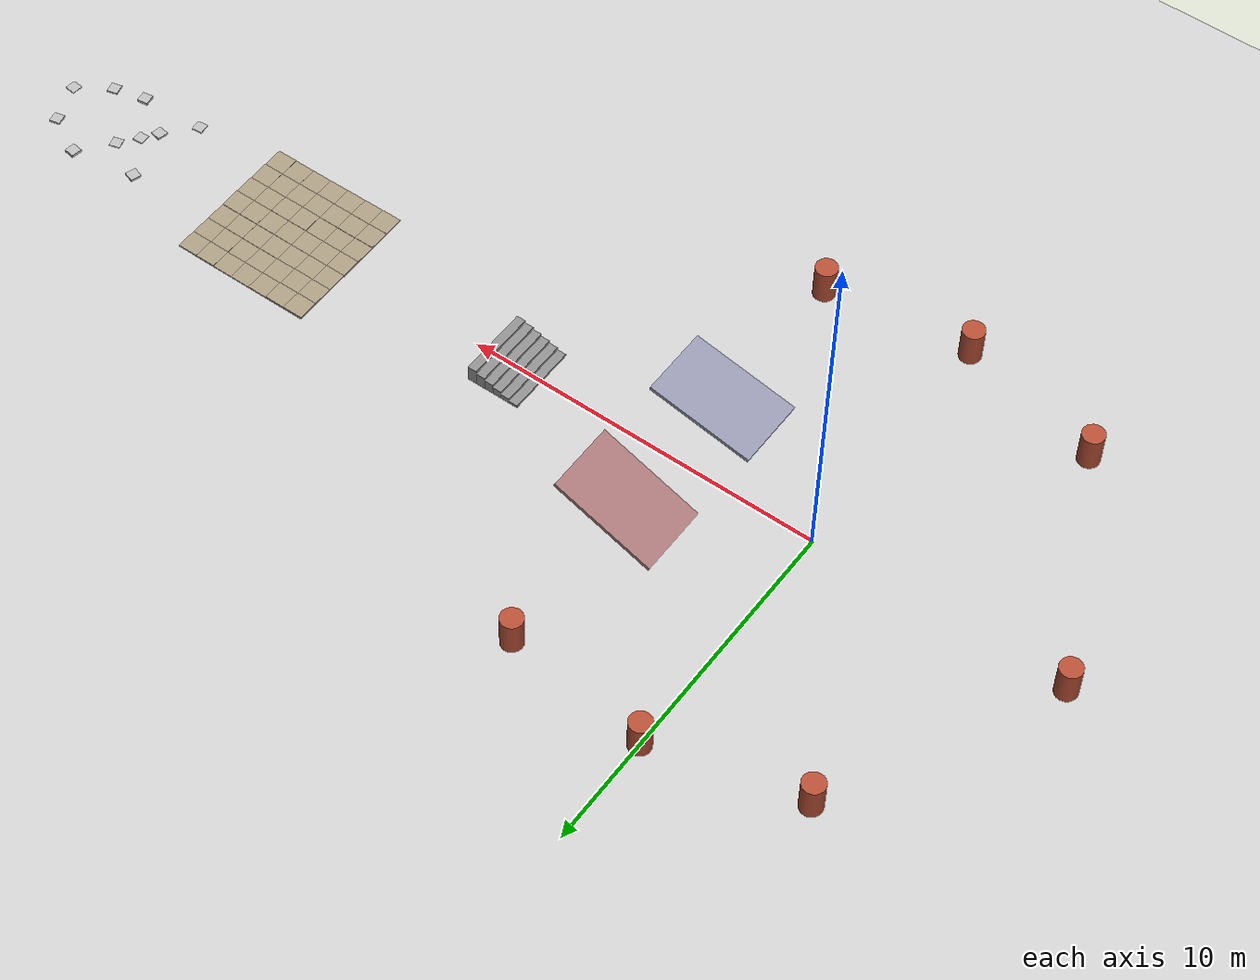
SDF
<?xml version="1.0" ?>
<sdf version="1.8">
  <world name="multi_terrain">

    <physics name='4ms' type='ignored'>
      <max_step_size>0.004</max_step_size>
      <real_time_factor>1</real_time_factor>
    </physics>

    <plugin filename="ignition-gazebo-physics-system"
            name="ignition::gazebo::systems::Physics"/>
    <plugin filename="ignition-gazebo-user-commands-system"
            name="ignition::gazebo::systems::UserCommands"/>
    <plugin filename="ignition-gazebo-scene-broadcaster-system"
            name="ignition::gazebo::systems::SceneBroadcaster"/>
    <plugin filename="ignition-gazebo-sensors-system"
            name="ignition::gazebo::systems::Sensors">
      <render_engine>ogre2</render_engine>
    </plugin>
    <plugin filename="ignition-gazebo-contact-system"
            name="ignition::gazebo::systems::Contact"/>
    <plugin filename="ignition-gazebo-imu-system"
            name="ignition::gazebo::systems::Imu"/>

    <light type="directional" name="sun">
      <cast_shadows>true</cast_shadows>
      <pose>0 0 10 0 0 0</pose>
      <diffuse>0.8 0.8 0.8 1</diffuse>
      <specular>0.2 0.2 0.2 1</specular>
      <direction>-0.5 0.1 -0.9</direction>
    </light>

    <model name="ground_plane">
      <static>true</static>
      <link name="link">
        <collision name="collision">
          <geometry><plane><normal>0 0 1</normal><size>200 200</size></plane></geometry>
          <surface><friction><ode><mu>1.0</mu><mu2>1.0</mu2></ode></friction></surface>
        </collision>
        <visual name="visual">
          <geometry><plane><normal>0 0 1</normal><size>200 200</size></plane></geometry>
          <material><ambient>0.8 0.8 0.8 1</ambient><diffuse>0.8 0.8 0.8 1</diffuse></material>
        </visual>
      </link>
    </model>

    <!-- Ramps (x ~ 2.5-5.5m): two lanes, 12 deg and 22 deg, rising toward +X -->
    <model name="ramp_12deg">
      <static>true</static>
      <pose>4 -2 0.3608 0 -0.2094 0</pose>
      <link name="link">
        <collision name="collision">
          <geometry><box><size>3 2 0.1</size></box></geometry>
          <surface><friction><ode><mu>1.0</mu><mu2>1.0</mu2></ode></friction></surface>
        </collision>
        <visual name="visual">
          <geometry><box><size>3 2 0.1</size></box></geometry>
          <material><ambient>0.6 0.6 0.7 1</ambient><diffuse>0.6 0.6 0.7 1</diffuse></material>
        </visual>
      </link>
    </model>

    <model name="ramp_22deg">
      <static>true</static>
      <pose>4 2 0.6083 0 -0.3840 0</pose>
      <link name="link">
        <collision name="collision">
          <geometry><box><size>3 2 0.1</size></box></geometry>
          <surface><friction><ode><mu>1.0</mu><mu2>1.0</mu2></ode></friction></surface>
        </collision>
        <visual name="visual">
          <geometry><box><size>3 2 0.1</size></box></geometry>
          <material><ambient>0.7 0.5 0.5 1</ambient><diffuse>0.7 0.5 0.5 1</diffuse></material>
        </visual>
      </link>
    </model>

    <!-- Staircase (x ~ 8-9.5m): 6 steps, 0.08m rise x 0.25m run -->
    <model name="staircase">
      <static>true</static>
      <pose>0 0 0 0 0 0</pose>
      <link name="step_1">
        <pose>8.125 0 0.04 0 0 0</pose>
        <collision name="collision"><geometry><box><size>0.25 2 0.08</size></box></geometry></collision>
        <visual name="visual"><geometry><box><size>0.25 2 0.08</size></box></geometry>
          <material><ambient>0.55 0.55 0.55 1</ambient><diffuse>0.55 0.55 0.55 1</diffuse></material></visual>
      </link>
      <link name="step_2">
        <pose>8.375 0 0.08 0 0 0</pose>
        <collision name="collision"><geometry><box><size>0.25 2 0.16</size></box></geometry></collision>
        <visual name="visual"><geometry><box><size>0.25 2 0.16</size></box></geometry>
          <material><ambient>0.55 0.55 0.55 1</ambient><diffuse>0.55 0.55 0.55 1</diffuse></material></visual>
      </link>
      <link name="step_3">
        <pose>8.625 0 0.12 0 0 0</pose>
        <collision name="collision"><geometry><box><size>0.25 2 0.24</size></box></geometry></collision>
        <visual name="visual"><geometry><box><size>0.25 2 0.24</size></box></geometry>
          <material><ambient>0.55 0.55 0.55 1</ambient><diffuse>0.55 0.55 0.55 1</diffuse></material></visual>
      </link>
      <link name="step_4">
        <pose>8.875 0 0.16 0 0 0</pose>
        <collision name="collision"><geometry><box><size>0.25 2 0.32</size></box></geometry></collision>
        <visual name="visual"><geometry><box><size>0.25 2 0.32</size></box></geometry>
          <material><ambient>0.55 0.55 0.55 1</ambient><diffuse>0.55 0.55 0.55 1</diffuse></material></visual>
      </link>
      <link name="step_5">
        <pose>9.125 0 0.2 0 0 0</pose>
        <collision name="collision"><geometry><box><size>0.25 2 0.4</size></box></geometry></collision>
        <visual name="visual"><geometry><box><size>0.25 2 0.4</size></box></geometry>
          <material><ambient>0.55 0.55 0.55 1</ambient><diffuse>0.55 0.55 0.55 1</diffuse></material></visual>
      </link>
      <link name="step_6">
        <pose>9.375 0 0.24 0 0 0</pose>
        <collision name="collision"><geometry><box><size>0.25 2 0.48</size></box></geometry></collision>
        <visual name="visual"><geometry><box><size>0.25 2 0.48</size></box></geometry>
          <material><ambient>0.55 0.55 0.55 1</ambient><diffuse>0.55 0.55 0.55 1</diffuse></material></visual>
      </link>
    </model>

    <model name="rough_patch">
      <static>true</static>
      <pose>0 0 0 0 0 0</pose>
      <link name="bump_0_0"><pose>14.286 -1.714 0.025 0 0 0</pose>
        <collision name="collision"><geometry><box><size>0.571 0.571 0.050</size></box></geometry>
          <surface><friction><ode><mu>1.0</mu><mu2>1.0</mu2></ode></friction></surface></collision>
        <visual name="visual"><geometry><box><size>0.571 0.571 0.050</size></box></geometry>
          <material><ambient>0.65 0.6 0.5 1</ambient><diffuse>0.65 0.6 0.5 1</diffuse></material></visual></link>
      <link name="bump_0_1"><pose>14.286 -1.143 0.024 0 0 0</pose>
        <collision name="collision"><geometry><box><size>0.571 0.571 0.048</size></box></geometry>
          <surface><friction><ode><mu>1.0</mu><mu2>1.0</mu2></ode></friction></surface></collision>
        <visual name="visual"><geometry><box><size>0.571 0.571 0.048</size></box></geometry>
          <material><ambient>0.65 0.6 0.5 1</ambient><diffuse>0.65 0.6 0.5 1</diffuse></material></visual></link>
      <link name="bump_0_2"><pose>14.286 -0.571 0.021 0 0 0</pose>
        <collision name="collision"><geometry><box><size>0.571 0.571 0.041</size></box></geometry>
          <surface><friction><ode><mu>1.0</mu><mu2>1.0</mu2></ode></friction></surface></collision>
        <visual name="visual"><geometry><box><size>0.571 0.571 0.041</size></box></geometry>
          <material><ambient>0.65 0.6 0.5 1</ambient><diffuse>0.65 0.6 0.5 1</diffuse></material></visual></link>
      <link name="bump_0_3"><pose>14.286 0.000 0.021 0 0 0</pose>
        <collision name="collision"><geometry><box><size>0.571 0.571 0.043</size></box></geometry>
          <surface><friction><ode><mu>1.0</mu><mu2>1.0</mu2></ode></friction></surface></collision>
        <visual name="visual"><geometry><box><size>0.571 0.571 0.043</size></box></geometry>
          <material><ambient>0.65 0.6 0.5 1</ambient><diffuse>0.65 0.6 0.5 1</diffuse></material></visual></link>
      <link name="bump_0_4"><pose>14.286 0.571 0.024 0 0 0</pose>
        <collision name="collision"><geometry><box><size>0.571 0.571 0.048</size></box></geometry>
          <surface><friction><ode><mu>1.0</mu><mu2>1.0</mu2></ode></friction></surface></collision>
        <visual name="visual"><geometry><box><size>0.571 0.571 0.048</size></box></geometry>
          <material><ambient>0.65 0.6 0.5 1</ambient><diffuse>0.65 0.6 0.5 1</diffuse></material></visual></link>
      <link name="bump_0_5"><pose>14.286 1.143 0.028 0 0 0</pose>
        <collision name="collision"><geometry><box><size>0.571 0.571 0.055</size></box></geometry>
          <surface><friction><ode><mu>1.0</mu><mu2>1.0</mu2></ode></friction></surface></collision>
        <visual name="visual"><geometry><box><size>0.571 0.571 0.055</size></box></geometry>
          <material><ambient>0.65 0.6 0.5 1</ambient><diffuse>0.65 0.6 0.5 1</diffuse></material></visual></link>
      <link name="bump_0_6"><pose>14.286 1.714 0.035 0 0 0</pose>
        <collision name="collision"><geometry><box><size>0.571 0.571 0.070</size></box></geometry>
          <surface><friction><ode><mu>1.0</mu><mu2>1.0</mu2></ode></friction></surface></collision>
        <visual name="visual"><geometry><box><size>0.571 0.571 0.070</size></box></geometry>
          <material><ambient>0.65 0.6 0.5 1</ambient><diffuse>0.65 0.6 0.5 1</diffuse></material></visual></link>
      <link name="bump_1_0"><pose>14.857 -1.714 0.020 0 0 0</pose>
        <collision name="collision"><geometry><box><size>0.571 0.571 0.040</size></box></geometry>
          <surface><friction><ode><mu>1.0</mu><mu2>1.0</mu2></ode></friction></surface></collision>
        <visual name="visual"><geometry><box><size>0.571 0.571 0.040</size></box></geometry>
          <material><ambient>0.65 0.6 0.5 1</ambient><diffuse>0.65 0.6 0.5 1</diffuse></material></visual></link>
      <link name="bump_1_1"><pose>14.857 -1.143 0.019 0 0 0</pose>
        <collision name="collision"><geometry><box><size>0.571 0.571 0.038</size></box></geometry>
          <surface><friction><ode><mu>1.0</mu><mu2>1.0</mu2></ode></friction></surface></collision>
        <visual name="visual"><geometry><box><size>0.571 0.571 0.038</size></box></geometry>
          <material><ambient>0.65 0.6 0.5 1</ambient><diffuse>0.65 0.6 0.5 1</diffuse></material></visual></link>
      <link name="bump_1_2"><pose>14.857 -0.571 0.014 0 0 0</pose>
        <collision name="collision"><geometry><box><size>0.571 0.571 0.027</size></box></geometry>
          <surface><friction><ode><mu>1.0</mu><mu2>1.0</mu2></ode></friction></surface></collision>
        <visual name="visual"><geometry><box><size>0.571 0.571 0.027</size></box></geometry>
          <material><ambient>0.65 0.6 0.5 1</ambient><diffuse>0.65 0.6 0.5 1</diffuse></material></visual></link>
      <link name="bump_1_3"><pose>14.857 0.000 0.020 0 0 0</pose>
        <collision name="collision"><geometry><box><size>0.571 0.571 0.040</size></box></geometry>
          <surface><friction><ode><mu>1.0</mu><mu2>1.0</mu2></ode></friction></surface></collision>
        <visual name="visual"><geometry><box><size>0.571 0.571 0.040</size></box></geometry>
          <material><ambient>0.65 0.6 0.5 1</ambient><diffuse>0.65 0.6 0.5 1</diffuse></material></visual></link>
      <link name="bump_1_4"><pose>14.857 0.571 0.022 0 0 0</pose>
        <collision name="collision"><geometry><box><size>0.571 0.571 0.045</size></box></geometry>
          <surface><friction><ode><mu>1.0</mu><mu2>1.0</mu2></ode></friction></surface></collision>
        <visual name="visual"><geometry><box><size>0.571 0.571 0.045</size></box></geometry>
          <material><ambient>0.65 0.6 0.5 1</ambient><diffuse>0.65 0.6 0.5 1</diffuse></material></visual></link>
      <link name="bump_1_5"><pose>14.857 1.143 0.030 0 0 0</pose>
        <collision name="collision"><geometry><box><size>0.571 0.571 0.060</size></box></geometry>
          <surface><friction><ode><mu>1.0</mu><mu2>1.0</mu2></ode></friction></surface></collision>
        <visual name="visual"><geometry><box><size>0.571 0.571 0.060</size></box></geometry>
          <material><ambient>0.65 0.6 0.5 1</ambient><diffuse>0.65 0.6 0.5 1</diffuse></material></visual></link>
      <link name="bump_1_6"><pose>14.857 1.714 0.033 0 0 0</pose>
        <collision name="collision"><geometry><box><size>0.571 0.571 0.066</size></box></geometry>
          <surface><friction><ode><mu>1.0</mu><mu2>1.0</mu2></ode></friction></surface></collision>
        <visual name="visual"><geometry><box><size>0.571 0.571 0.066</size></box></geometry>
          <material><ambient>0.65 0.6 0.5 1</ambient><diffuse>0.65 0.6 0.5 1</diffuse></material></visual></link>
      <link name="bump_2_0"><pose>15.429 -1.714 0.018 0 0 0</pose>
        <collision name="collision"><geometry><box><size>0.571 0.571 0.036</size></box></geometry>
          <surface><friction><ode><mu>1.0</mu><mu2>1.0</mu2></ode></friction></surface></collision>
        <visual name="visual"><geometry><box><size>0.571 0.571 0.036</size></box></geometry>
          <material><ambient>0.65 0.6 0.5 1</ambient><diffuse>0.65 0.6 0.5 1</diffuse></material></visual></link>
      <link name="bump_2_1"><pose>15.429 -1.143 0.020 0 0 0</pose>
        <collision name="collision"><geometry><box><size>0.571 0.571 0.040</size></box></geometry>
          <surface><friction><ode><mu>1.0</mu><mu2>1.0</mu2></ode></friction></surface></collision>
        <visual name="visual"><geometry><box><size>0.571 0.571 0.040</size></box></geometry>
          <material><ambient>0.65 0.6 0.5 1</ambient><diffuse>0.65 0.6 0.5 1</diffuse></material></visual></link>
      <link name="bump_2_2"><pose>15.429 -0.571 0.018 0 0 0</pose>
        <collision name="collision"><geometry><box><size>0.571 0.571 0.035</size></box></geometry>
          <surface><friction><ode><mu>1.0</mu><mu2>1.0</mu2></ode></friction></surface></collision>
        <visual name="visual"><geometry><box><size>0.571 0.571 0.035</size></box></geometry>
          <material><ambient>0.65 0.6 0.5 1</ambient><diffuse>0.65 0.6 0.5 1</diffuse></material></visual></link>
      <link name="bump_2_3"><pose>15.429 0.000 0.021 0 0 0</pose>
        <collision name="collision"><geometry><box><size>0.571 0.571 0.043</size></box></geometry>
          <surface><friction><ode><mu>1.0</mu><mu2>1.0</mu2></ode></friction></surface></collision>
        <visual name="visual"><geometry><box><size>0.571 0.571 0.043</size></box></geometry>
          <material><ambient>0.65 0.6 0.5 1</ambient><diffuse>0.65 0.6 0.5 1</diffuse></material></visual></link>
      <link name="bump_2_4"><pose>15.429 0.571 0.020 0 0 0</pose>
        <collision name="collision"><geometry><box><size>0.571 0.571 0.041</size></box></geometry>
          <surface><friction><ode><mu>1.0</mu><mu2>1.0</mu2></ode></friction></surface></collision>
        <visual name="visual"><geometry><box><size>0.571 0.571 0.041</size></box></geometry>
          <material><ambient>0.65 0.6 0.5 1</ambient><diffuse>0.65 0.6 0.5 1</diffuse></material></visual></link>
      <link name="bump_2_5"><pose>15.429 1.143 0.023 0 0 0</pose>
        <collision name="collision"><geometry><box><size>0.571 0.571 0.046</size></box></geometry>
          <surface><friction><ode><mu>1.0</mu><mu2>1.0</mu2></ode></friction></surface></collision>
        <visual name="visual"><geometry><box><size>0.571 0.571 0.046</size></box></geometry>
          <material><ambient>0.65 0.6 0.5 1</ambient><diffuse>0.65 0.6 0.5 1</diffuse></material></visual></link>
      <link name="bump_2_6"><pose>15.429 1.714 0.021 0 0 0</pose>
        <collision name="collision"><geometry><box><size>0.571 0.571 0.042</size></box></geometry>
          <surface><friction><ode><mu>1.0</mu><mu2>1.0</mu2></ode></friction></surface></collision>
        <visual name="visual"><geometry><box><size>0.571 0.571 0.042</size></box></geometry>
          <material><ambient>0.65 0.6 0.5 1</ambient><diffuse>0.65 0.6 0.5 1</diffuse></material></visual></link>
      <link name="bump_3_0"><pose>16.000 -1.714 0.014 0 0 0</pose>
        <collision name="collision"><geometry><box><size>0.571 0.571 0.027</size></box></geometry>
          <surface><friction><ode><mu>1.0</mu><mu2>1.0</mu2></ode></friction></surface></collision>
        <visual name="visual"><geometry><box><size>0.571 0.571 0.027</size></box></geometry>
          <material><ambient>0.65 0.6 0.5 1</ambient><diffuse>0.65 0.6 0.5 1</diffuse></material></visual></link>
      <link name="bump_3_1"><pose>16.000 -1.143 0.021 0 0 0</pose>
        <collision name="collision"><geometry><box><size>0.571 0.571 0.042</size></box></geometry>
          <surface><friction><ode><mu>1.0</mu><mu2>1.0</mu2></ode></friction></surface></collision>
        <visual name="visual"><geometry><box><size>0.571 0.571 0.042</size></box></geometry>
          <material><ambient>0.65 0.6 0.5 1</ambient><diffuse>0.65 0.6 0.5 1</diffuse></material></visual></link>
      <link name="bump_3_2"><pose>16.000 -0.571 0.026 0 0 0</pose>
        <collision name="collision"><geometry><box><size>0.571 0.571 0.053</size></box></geometry>
          <surface><friction><ode><mu>1.0</mu><mu2>1.0</mu2></ode></friction></surface></collision>
        <visual name="visual"><geometry><box><size>0.571 0.571 0.053</size></box></geometry>
          <material><ambient>0.65 0.6 0.5 1</ambient><diffuse>0.65 0.6 0.5 1</diffuse></material></visual></link>
      <link name="bump_3_3"><pose>16.000 0.000 0.023 0 0 0</pose>
        <collision name="collision"><geometry><box><size>0.571 0.571 0.046</size></box></geometry>
          <surface><friction><ode><mu>1.0</mu><mu2>1.0</mu2></ode></friction></surface></collision>
        <visual name="visual"><geometry><box><size>0.571 0.571 0.046</size></box></geometry>
          <material><ambient>0.65 0.6 0.5 1</ambient><diffuse>0.65 0.6 0.5 1</diffuse></material></visual></link>
      <link name="bump_3_4"><pose>16.000 0.571 0.019 0 0 0</pose>
        <collision name="collision"><geometry><box><size>0.571 0.571 0.038</size></box></geometry>
          <surface><friction><ode><mu>1.0</mu><mu2>1.0</mu2></ode></friction></surface></collision>
        <visual name="visual"><geometry><box><size>0.571 0.571 0.038</size></box></geometry>
          <material><ambient>0.65 0.6 0.5 1</ambient><diffuse>0.65 0.6 0.5 1</diffuse></material></visual></link>
      <link name="bump_3_5"><pose>16.000 1.143 0.016 0 0 0</pose>
        <collision name="collision"><geometry><box><size>0.571 0.571 0.031</size></box></geometry>
          <surface><friction><ode><mu>1.0</mu><mu2>1.0</mu2></ode></friction></surface></collision>
        <visual name="visual"><geometry><box><size>0.571 0.571 0.031</size></box></geometry>
          <material><ambient>0.65 0.6 0.5 1</ambient><diffuse>0.65 0.6 0.5 1</diffuse></material></visual></link>
      <link name="bump_3_6"><pose>16.000 1.714 0.015 0 0 0</pose>
        <collision name="collision"><geometry><box><size>0.571 0.571 0.030</size></box></geometry>
          <surface><friction><ode><mu>1.0</mu><mu2>1.0</mu2></ode></friction></surface></collision>
        <visual name="visual"><geometry><box><size>0.571 0.571 0.030</size></box></geometry>
          <material><ambient>0.65 0.6 0.5 1</ambient><diffuse>0.65 0.6 0.5 1</diffuse></material></visual></link>
      <link name="bump_4_0"><pose>16.571 -1.714 0.010 0 0 0</pose>
        <collision name="collision"><geometry><box><size>0.571 0.571 0.020</size></box></geometry>
          <surface><friction><ode><mu>1.0</mu><mu2>1.0</mu2></ode></friction></surface></collision>
        <visual name="visual"><geometry><box><size>0.571 0.571 0.020</size></box></geometry>
          <material><ambient>0.65 0.6 0.5 1</ambient><diffuse>0.65 0.6 0.5 1</diffuse></material></visual></link>
      <link name="bump_4_1"><pose>16.571 -1.143 0.019 0 0 0</pose>
        <collision name="collision"><geometry><box><size>0.571 0.571 0.037</size></box></geometry>
          <surface><friction><ode><mu>1.0</mu><mu2>1.0</mu2></ode></friction></surface></collision>
        <visual name="visual"><geometry><box><size>0.571 0.571 0.037</size></box></geometry>
          <material><ambient>0.65 0.6 0.5 1</ambient><diffuse>0.65 0.6 0.5 1</diffuse></material></visual></link>
      <link name="bump_4_2"><pose>16.571 -0.571 0.026 0 0 0</pose>
        <collision name="collision"><geometry><box><size>0.571 0.571 0.053</size></box></geometry>
          <surface><friction><ode><mu>1.0</mu><mu2>1.0</mu2></ode></friction></surface></collision>
        <visual name="visual"><geometry><box><size>0.571 0.571 0.053</size></box></geometry>
          <material><ambient>0.65 0.6 0.5 1</ambient><diffuse>0.65 0.6 0.5 1</diffuse></material></visual></link>
      <link name="bump_4_3"><pose>16.571 0.000 0.023 0 0 0</pose>
        <collision name="collision"><geometry><box><size>0.571 0.571 0.046</size></box></geometry>
          <surface><friction><ode><mu>1.0</mu><mu2>1.0</mu2></ode></friction></surface></collision>
        <visual name="visual"><geometry><box><size>0.571 0.571 0.046</size></box></geometry>
          <material><ambient>0.65 0.6 0.5 1</ambient><diffuse>0.65 0.6 0.5 1</diffuse></material></visual></link>
      <link name="bump_4_4"><pose>16.571 0.571 0.018 0 0 0</pose>
        <collision name="collision"><geometry><box><size>0.571 0.571 0.035</size></box></geometry>
          <surface><friction><ode><mu>1.0</mu><mu2>1.0</mu2></ode></friction></surface></collision>
        <visual name="visual"><geometry><box><size>0.571 0.571 0.035</size></box></geometry>
          <material><ambient>0.65 0.6 0.5 1</ambient><diffuse>0.65 0.6 0.5 1</diffuse></material></visual></link>
      <link name="bump_4_5"><pose>16.571 1.143 0.014 0 0 0</pose>
        <collision name="collision"><geometry><box><size>0.571 0.571 0.028</size></box></geometry>
          <surface><friction><ode><mu>1.0</mu><mu2>1.0</mu2></ode></friction></surface></collision>
        <visual name="visual"><geometry><box><size>0.571 0.571 0.028</size></box></geometry>
          <material><ambient>0.65 0.6 0.5 1</ambient><diffuse>0.65 0.6 0.5 1</diffuse></material></visual></link>
      <link name="bump_4_6"><pose>16.571 1.714 0.015 0 0 0</pose>
        <collision name="collision"><geometry><box><size>0.571 0.571 0.030</size></box></geometry>
          <surface><friction><ode><mu>1.0</mu><mu2>1.0</mu2></ode></friction></surface></collision>
        <visual name="visual"><geometry><box><size>0.571 0.571 0.030</size></box></geometry>
          <material><ambient>0.65 0.6 0.5 1</ambient><diffuse>0.65 0.6 0.5 1</diffuse></material></visual></link>
      <link name="bump_5_0"><pose>17.143 -1.714 0.010 0 0 0</pose>
        <collision name="collision"><geometry><box><size>0.571 0.571 0.020</size></box></geometry>
          <surface><friction><ode><mu>1.0</mu><mu2>1.0</mu2></ode></friction></surface></collision>
        <visual name="visual"><geometry><box><size>0.571 0.571 0.020</size></box></geometry>
          <material><ambient>0.65 0.6 0.5 1</ambient><diffuse>0.65 0.6 0.5 1</diffuse></material></visual></link>
      <link name="bump_5_1"><pose>17.143 -1.143 0.016 0 0 0</pose>
        <collision name="collision"><geometry><box><size>0.571 0.571 0.033</size></box></geometry>
          <surface><friction><ode><mu>1.0</mu><mu2>1.0</mu2></ode></friction></surface></collision>
        <visual name="visual"><geometry><box><size>0.571 0.571 0.033</size></box></geometry>
          <material><ambient>0.65 0.6 0.5 1</ambient><diffuse>0.65 0.6 0.5 1</diffuse></material></visual></link>
      <link name="bump_5_2"><pose>17.143 -0.571 0.022 0 0 0</pose>
        <collision name="collision"><geometry><box><size>0.571 0.571 0.044</size></box></geometry>
          <surface><friction><ode><mu>1.0</mu><mu2>1.0</mu2></ode></friction></surface></collision>
        <visual name="visual"><geometry><box><size>0.571 0.571 0.044</size></box></geometry>
          <material><ambient>0.65 0.6 0.5 1</ambient><diffuse>0.65 0.6 0.5 1</diffuse></material></visual></link>
      <link name="bump_5_3"><pose>17.143 0.000 0.024 0 0 0</pose>
        <collision name="collision"><geometry><box><size>0.571 0.571 0.047</size></box></geometry>
          <surface><friction><ode><mu>1.0</mu><mu2>1.0</mu2></ode></friction></surface></collision>
        <visual name="visual"><geometry><box><size>0.571 0.571 0.047</size></box></geometry>
          <material><ambient>0.65 0.6 0.5 1</ambient><diffuse>0.65 0.6 0.5 1</diffuse></material></visual></link>
      <link name="bump_5_4"><pose>17.143 0.571 0.018 0 0 0</pose>
        <collision name="collision"><geometry><box><size>0.571 0.571 0.036</size></box></geometry>
          <surface><friction><ode><mu>1.0</mu><mu2>1.0</mu2></ode></friction></surface></collision>
        <visual name="visual"><geometry><box><size>0.571 0.571 0.036</size></box></geometry>
          <material><ambient>0.65 0.6 0.5 1</ambient><diffuse>0.65 0.6 0.5 1</diffuse></material></visual></link>
      <link name="bump_5_5"><pose>17.143 1.143 0.018 0 0 0</pose>
        <collision name="collision"><geometry><box><size>0.571 0.571 0.036</size></box></geometry>
          <surface><friction><ode><mu>1.0</mu><mu2>1.0</mu2></ode></friction></surface></collision>
        <visual name="visual"><geometry><box><size>0.571 0.571 0.036</size></box></geometry>
          <material><ambient>0.65 0.6 0.5 1</ambient><diffuse>0.65 0.6 0.5 1</diffuse></material></visual></link>
      <link name="bump_5_6"><pose>17.143 1.714 0.021 0 0 0</pose>
        <collision name="collision"><geometry><box><size>0.571 0.571 0.043</size></box></geometry>
          <surface><friction><ode><mu>1.0</mu><mu2>1.0</mu2></ode></friction></surface></collision>
        <visual name="visual"><geometry><box><size>0.571 0.571 0.043</size></box></geometry>
          <material><ambient>0.65 0.6 0.5 1</ambient><diffuse>0.65 0.6 0.5 1</diffuse></material></visual></link>
      <link name="bump_6_0"><pose>17.714 -1.714 0.015 0 0 0</pose>
        <collision name="collision"><geometry><box><size>0.571 0.571 0.029</size></box></geometry>
          <surface><friction><ode><mu>1.0</mu><mu2>1.0</mu2></ode></friction></surface></collision>
        <visual name="visual"><geometry><box><size>0.571 0.571 0.029</size></box></geometry>
          <material><ambient>0.65 0.6 0.5 1</ambient><diffuse>0.65 0.6 0.5 1</diffuse></material></visual></link>
      <link name="bump_6_1"><pose>17.714 -1.143 0.018 0 0 0</pose>
        <collision name="collision"><geometry><box><size>0.571 0.571 0.036</size></box></geometry>
          <surface><friction><ode><mu>1.0</mu><mu2>1.0</mu2></ode></friction></surface></collision>
        <visual name="visual"><geometry><box><size>0.571 0.571 0.036</size></box></geometry>
          <material><ambient>0.65 0.6 0.5 1</ambient><diffuse>0.65 0.6 0.5 1</diffuse></material></visual></link>
      <link name="bump_6_2"><pose>17.714 -0.571 0.019 0 0 0</pose>
        <collision name="collision"><geometry><box><size>0.571 0.571 0.039</size></box></geometry>
          <surface><friction><ode><mu>1.0</mu><mu2>1.0</mu2></ode></friction></surface></collision>
        <visual name="visual"><geometry><box><size>0.571 0.571 0.039</size></box></geometry>
          <material><ambient>0.65 0.6 0.5 1</ambient><diffuse>0.65 0.6 0.5 1</diffuse></material></visual></link>
      <link name="bump_6_3"><pose>17.714 0.000 0.024 0 0 0</pose>
        <collision name="collision"><geometry><box><size>0.571 0.571 0.047</size></box></geometry>
          <surface><friction><ode><mu>1.0</mu><mu2>1.0</mu2></ode></friction></surface></collision>
        <visual name="visual"><geometry><box><size>0.571 0.571 0.047</size></box></geometry>
          <material><ambient>0.65 0.6 0.5 1</ambient><diffuse>0.65 0.6 0.5 1</diffuse></material></visual></link>
      <link name="bump_6_4"><pose>17.714 0.571 0.017 0 0 0</pose>
        <collision name="collision"><geometry><box><size>0.571 0.571 0.034</size></box></geometry>
          <surface><friction><ode><mu>1.0</mu><mu2>1.0</mu2></ode></friction></surface></collision>
        <visual name="visual"><geometry><box><size>0.571 0.571 0.034</size></box></geometry>
          <material><ambient>0.65 0.6 0.5 1</ambient><diffuse>0.65 0.6 0.5 1</diffuse></material></visual></link>
      <link name="bump_6_5"><pose>17.714 1.143 0.019 0 0 0</pose>
        <collision name="collision"><geometry><box><size>0.571 0.571 0.038</size></box></geometry>
          <surface><friction><ode><mu>1.0</mu><mu2>1.0</mu2></ode></friction></surface></collision>
        <visual name="visual"><geometry><box><size>0.571 0.571 0.038</size></box></geometry>
          <material><ambient>0.65 0.6 0.5 1</ambient><diffuse>0.65 0.6 0.5 1</diffuse></material></visual></link>
      <link name="bump_6_6"><pose>17.714 1.714 0.024 0 0 0</pose>
        <collision name="collision"><geometry><box><size>0.571 0.571 0.047</size></box></geometry>
          <surface><friction><ode><mu>1.0</mu><mu2>1.0</mu2></ode></friction></surface></collision>
        <visual name="visual"><geometry><box><size>0.571 0.571 0.047</size></box></geometry>
          <material><ambient>0.65 0.6 0.5 1</ambient><diffuse>0.65 0.6 0.5 1</diffuse></material></visual></link>
    </model>

    <!-- Discrete obstacles (x ~ 20-24m): jittered grid of small boxes -->
    <model name="obstacles">
      <static>true</static>
      <pose>0 0 0 0 0 0</pose>
      <link name="ob_1"><pose>20.2 -1.4 0.02 0 0 0.1</pose>
        <collision name="collision"><geometry><box><size>0.3 0.3 0.04</size></box></geometry></collision>
        <visual name="visual"><geometry><box><size>0.3 0.3 0.04</size></box></geometry></visual></link>
      <link name="ob_2"><pose>20.9 -0.6 0.03 0 0 -0.2</pose>
        <collision name="collision"><geometry><box><size>0.3 0.3 0.06</size></box></geometry></collision>
        <visual name="visual"><geometry><box><size>0.3 0.3 0.06</size></box></geometry></visual></link>
      <link name="ob_3"><pose>21.6 0.3 0.015 0 0 0.3</pose>
        <collision name="collision"><geometry><box><size>0.3 0.3 0.03</size></box></geometry></collision>
        <visual name="visual"><geometry><box><size>0.3 0.3 0.03</size></box></geometry></visual></link>
      <link name="ob_4"><pose>22.3 1.2 0.04 0 0 -0.15</pose>
        <collision name="collision"><geometry><box><size>0.3 0.3 0.08</size></box></geometry></collision>
        <visual name="visual"><geometry><box><size>0.3 0.3 0.08</size></box></geometry></visual></link>
      <link name="ob_5"><pose>22.9 -1.1 0.025 0 0 0.25</pose>
        <collision name="collision"><geometry><box><size>0.3 0.3 0.05</size></box></geometry></collision>
        <visual name="visual"><geometry><box><size>0.3 0.3 0.05</size></box></geometry></visual></link>
      <link name="ob_6"><pose>20.5 0.9 0.035 0 0 -0.3</pose>
        <collision name="collision"><geometry><box><size>0.3 0.3 0.07</size></box></geometry></collision>
        <visual name="visual"><geometry><box><size>0.3 0.3 0.07</size></box></geometry></visual></link>
      <link name="ob_7"><pose>21.2 -0.2 0.02 0 0 0.05</pose>
        <collision name="collision"><geometry><box><size>0.3 0.3 0.04</size></box></geometry></collision>
        <visual name="visual"><geometry><box><size>0.3 0.3 0.04</size></box></geometry></visual></link>
      <link name="ob_8"><pose>23.4 0.6 0.03 0 0 0.2</pose>
        <collision name="collision"><geometry><box><size>0.3 0.3 0.06</size></box></geometry></collision>
        <visual name="visual"><geometry><box><size>0.3 0.3 0.06</size></box></geometry></visual></link>
      <link name="ob_9"><pose>23.8 -0.5 0.015 0 0 -0.1</pose>
        <collision name="collision"><geometry><box><size>0.3 0.3 0.03</size></box></geometry></collision>
        <visual name="visual"><geometry><box><size>0.3 0.3 0.03</size></box></geometry></visual></link>
      <link name="ob_10"><pose>22.0 -1.3 0.04 0 0 0.15</pose>
        <collision name="collision"><geometry><box><size>0.3 0.3 0.08</size></box></geometry></collision>
        <visual name="visual"><geometry><box><size>0.3 0.3 0.08</size></box></geometry></visual></link>
    </model>

    <!-- Overview camera (generic placement — see hospital.world's
         world_monitor_cam for the hand-tuned original). -->
    <model name='world_monitor_cam'>
      <static>true</static>
      <pose>7.2 3.0 4.3 0 0.55 -2.356</pose>
      <link name='link'>
        <sensor name='monitor_camera' type='camera'>
          <always_on>true</always_on>
          <update_rate>10</update_rate>
          <topic>world_monitor/image_raw</topic>
          <camera>
            <horizontal_fov>1.3</horizontal_fov>
            <image><width>960</width><height>540</height><format>R8G8B8</format></image>
            <clip><near>0.05</near><far>30.0</far></clip>
          </camera>
        </sensor>
      </link>
    </model>

    <model name='marker_pillar_0'><static>true</static><pose>-7 0 0.5 0 0 0</pose><link name='link'><collision name='c'><geometry><cylinder><radius>0.3</radius><length>1.0</length></cylinder></geometry></collision><visual name='v'><geometry><cylinder><radius>0.3</radius><length>1.0</length></cylinder></geometry><material><ambient>0.7 0.3 0.2 1</ambient><diffuse>0.7 0.3 0.2 1</diffuse></material></visual></link></model>
    <model name='marker_pillar_1'><static>true</static><pose>-4 6 0.5 0 0 0</pose><link name='link'><collision name='c'><geometry><cylinder><radius>0.3</radius><length>1.0</length></cylinder></geometry></collision><visual name='v'><geometry><cylinder><radius>0.3</radius><length>1.0</length></cylinder></geometry><material><ambient>0.7 0.3 0.2 1</ambient><diffuse>0.7 0.3 0.2 1</diffuse></material></visual></link></model>
    <model name='marker_pillar_2'><static>true</static><pose>-4 -6 0.5 0 0 0</pose><link name='link'><collision name='c'><geometry><cylinder><radius>0.3</radius><length>1.0</length></cylinder></geometry></collision><visual name='v'><geometry><cylinder><radius>0.3</radius><length>1.0</length></cylinder></geometry><material><ambient>0.7 0.3 0.2 1</ambient><diffuse>0.7 0.3 0.2 1</diffuse></material></visual></link></model>
    <model name='marker_pillar_3'><static>true</static><pose>0 7 0.5 0 0 0</pose><link name='link'><collision name='c'><geometry><cylinder><radius>0.3</radius><length>1.0</length></cylinder></geometry></collision><visual name='v'><geometry><cylinder><radius>0.3</radius><length>1.0</length></cylinder></geometry><material><ambient>0.7 0.3 0.2 1</ambient><diffuse>0.7 0.3 0.2 1</diffuse></material></visual></link></model>
    <model name='marker_pillar_4'><static>true</static><pose>0 -7 0.5 0 0 0</pose><link name='link'><collision name='c'><geometry><cylinder><radius>0.3</radius><length>1.0</length></cylinder></geometry></collision><visual name='v'><geometry><cylinder><radius>0.3</radius><length>1.0</length></cylinder></geometry><material><ambient>0.7 0.3 0.2 1</ambient><diffuse>0.7 0.3 0.2 1</diffuse></material></visual></link></model>
    <model name='marker_pillar_5'><static>true</static><pose>4 6.5 0.5 0 0 0</pose><link name='link'><collision name='c'><geometry><cylinder><radius>0.3</radius><length>1.0</length></cylinder></geometry></collision><visual name='v'><geometry><cylinder><radius>0.3</radius><length>1.0</length></cylinder></geometry><material><ambient>0.7 0.3 0.2 1</ambient><diffuse>0.7 0.3 0.2 1</diffuse></material></visual></link></model>
    <model name='marker_pillar_6'><static>true</static><pose>4 -6.5 0.5 0 0 0</pose><link name='link'><collision name='c'><geometry><cylinder><radius>0.3</radius><length>1.0</length></cylinder></geometry></collision><visual name='v'><geometry><cylinder><radius>0.3</radius><length>1.0</length></cylinder></geometry><material><ambient>0.7 0.3 0.2 1</ambient><diffuse>0.7 0.3 0.2 1</diffuse></material></visual></link></model>
</world>
</sdf>
